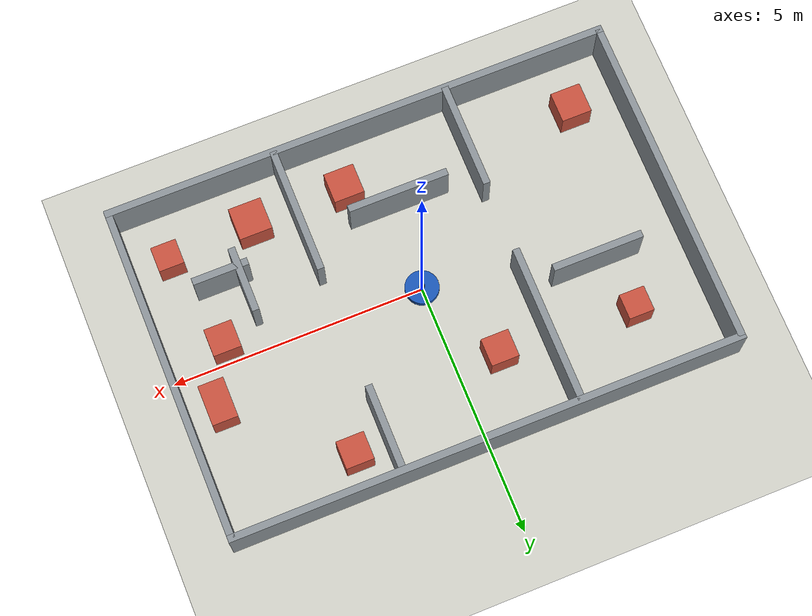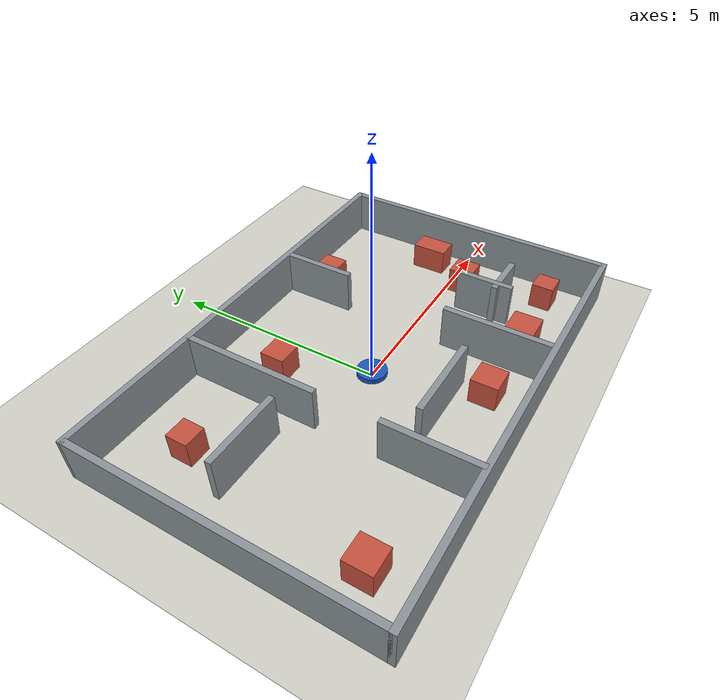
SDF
<?xml version="1.0"?>
<sdf version="1.9">
  <world name="nav_smoke">
    <physics name="1ms" type="ode">
      <max_step_size>0.001</max_step_size>
      <real_time_factor>1.0</real_time_factor>
      <real_time_update_rate>4000.0</real_time_update_rate>
    </physics>

    <plugin
      filename="gz-sim-physics-system"
      name="gz::sim::systems::Physics">
    </plugin>
    <plugin
      filename="gz-sim-user-commands-system"
      name="gz::sim::systems::UserCommands">
    </plugin>
    <plugin
      filename="gz-sim-scene-broadcaster-system"
      name="gz::sim::systems::SceneBroadcaster">
    </plugin>
    <plugin
      filename="gz-sim-sensors-system"
      name="gz::sim::systems::Sensors">
      <render_engine>ogre2</render_engine>
    </plugin>

    <scene>
      <ambient>0.45 0.45 0.45 1</ambient>
      <background>0.78 0.82 0.86 1</background>
      <shadows>false</shadows>
    </scene>

    <light name="sun" type="directional">
      <pose>0 0 10 0 0 0</pose>
      <diffuse>0.8 0.8 0.8 1</diffuse>
      <specular>0.2 0.2 0.2 1</specular>
      <direction>-0.5 0.2 -0.9</direction>
    </light>

    <model name="ground_plane">
      <static>true</static>
      <link name="link">
        <collision name="collision">
          <geometry>
            <plane>
              <normal>0 0 1</normal>
              <size>12 9</size>
            </plane>
          </geometry>
        </collision>
        <visual name="visual">
          <geometry>
            <plane>
              <normal>0 0 1</normal>
              <size>12 9</size>
            </plane>
          </geometry>
          <material>
            <ambient>0.82 0.82 0.78 1</ambient>
            <diffuse>0.82 0.82 0.78 1</diffuse>
          </material>
        </visual>
      </link>
    </model>

    <model name="test_room">
      <static>true</static>
      <link name="north_wall">
        <pose>0.0 3.3 0.5 0 0 0</pose>
        <collision name="collision">
          <geometry>
            <box>
              <size>10.14 0.14 1.0</size>
            </box>
          </geometry>
        </collision>
        <visual name="visual">
          <geometry>
            <box>
              <size>10.14 0.14 1.0</size>
            </box>
          </geometry>
          <material>
            <ambient>0.55 0.58 0.60 1</ambient>
            <diffuse>0.55 0.58 0.60 1</diffuse>
          </material>
        </visual>
      </link>

      <link name="south_wall">
        <pose>0.0 -3.3 0.5 0 0 0</pose>
        <collision name="collision">
          <geometry>
            <box>
              <size>10.14 0.14 1.0</size>
            </box>
          </geometry>
        </collision>
        <visual name="visual">
          <geometry>
            <box>
              <size>10.14 0.14 1.0</size>
            </box>
          </geometry>
          <material>
            <ambient>0.55 0.58 0.60 1</ambient>
            <diffuse>0.55 0.58 0.60 1</diffuse>
          </material>
        </visual>
      </link>

      <link name="west_wall">
        <pose>-5.0 0.0 0.5 0 0 0</pose>
        <collision name="collision">
          <geometry>
            <box>
              <size>0.14 6.6 1.0</size>
            </box>
          </geometry>
        </collision>
        <visual name="visual">
          <geometry>
            <box>
              <size>0.14 6.6 1.0</size>
            </box>
          </geometry>
          <material>
            <ambient>0.55 0.58 0.60 1</ambient>
            <diffuse>0.55 0.58 0.60 1</diffuse>
          </material>
        </visual>
      </link>

      <link name="east_wall">
        <pose>5.0 0.0 0.5 0 0 0</pose>
        <collision name="collision">
          <geometry>
            <box>
              <size>0.14 6.6 1.0</size>
            </box>
          </geometry>
        </collision>
        <visual name="visual">
          <geometry>
            <box>
              <size>0.14 6.6 1.0</size>
            </box>
          </geometry>
          <material>
            <ambient>0.55 0.58 0.60 1</ambient>
            <diffuse>0.55 0.58 0.60 1</diffuse>
          </material>
        </visual>
      </link>

      <link name="west_partition_south">
        <pose>-1.8 -2.25 0.5 0 0 0</pose>
        <collision name="collision">
          <geometry>
            <box>
              <size>0.14 2.1 1.0</size>
            </box>
          </geometry>
        </collision>
        <visual name="visual">
          <geometry>
            <box>
              <size>0.14 2.1 1.0</size>
            </box>
          </geometry>
          <material>
            <ambient>0.55 0.58 0.60 1</ambient>
            <diffuse>0.55 0.58 0.60 1</diffuse>
          </material>
        </visual>
      </link>

      <link name="west_partition_north">
        <pose>-1.8 1.75 0.5 0 0 0</pose>
        <collision name="collision">
          <geometry>
            <box>
              <size>0.14 3.1 1.0</size>
            </box>
          </geometry>
        </collision>
        <visual name="visual">
          <geometry>
            <box>
              <size>0.14 3.1 1.0</size>
            </box>
          </geometry>
          <material>
            <ambient>0.55 0.58 0.60 1</ambient>
            <diffuse>0.55 0.58 0.60 1</diffuse>
          </material>
        </visual>
      </link>

      <link name="east_partition_south">
        <pose>1.7 -2.05 0.5 0 0 0</pose>
        <collision name="collision">
          <geometry>
            <box>
              <size>0.14 2.5 1.0</size>
            </box>
          </geometry>
        </collision>
        <visual name="visual">
          <geometry>
            <box>
              <size>0.14 2.5 1.0</size>
            </box>
          </geometry>
          <material>
            <ambient>0.55 0.58 0.60 1</ambient>
            <diffuse>0.55 0.58 0.60 1</diffuse>
          </material>
        </visual>
      </link>

      <link name="east_partition_north">
        <pose>1.7 2.45 0.5 0 0 0</pose>
        <collision name="collision">
          <geometry>
            <box>
              <size>0.14 1.7 1.0</size>
            </box>
          </geometry>
        </collision>
        <visual name="visual">
          <geometry>
            <box>
              <size>0.14 1.7 1.0</size>
            </box>
          </geometry>
          <material>
            <ambient>0.55 0.58 0.60 1</ambient>
            <diffuse>0.55 0.58 0.60 1</diffuse>
          </material>
        </visual>
      </link>

      <link name="west_short_wall">
        <pose>-3.2 0.8 0.5 0 0 0</pose>
        <collision name="collision">
          <geometry>
            <box>
              <size>1.8 0.14 1.0</size>
            </box>
          </geometry>
        </collision>
        <visual name="visual">
          <geometry>
            <box>
              <size>1.8 0.14 1.0</size>
            </box>
          </geometry>
          <material>
            <ambient>0.55 0.58 0.60 1</ambient>
            <diffuse>0.55 0.58 0.60 1</diffuse>
          </material>
        </visual>
      </link>

      <link name="middle_short_wall">
        <pose>-0.2 -1.7 0.5 0 0 0</pose>
        <collision name="collision">
          <geometry>
            <box>
              <size>2.0 0.14 1.0</size>
            </box>
          </geometry>
        </collision>
        <visual name="visual">
          <geometry>
            <box>
              <size>2.0 0.14 1.0</size>
            </box>
          </geometry>
          <material>
            <ambient>0.55 0.58 0.60 1</ambient>
            <diffuse>0.55 0.58 0.60 1</diffuse>
          </material>
        </visual>
      </link>

      <link name="east_short_wall">
        <pose>3.45 -1.45 0.5 0 0 0</pose>
        <collision name="collision">
          <geometry>
            <box>
              <size>1.1 0.14 1.0</size>
            </box>
          </geometry>
        </collision>
        <visual name="visual">
          <geometry>
            <box>
              <size>1.1 0.14 1.0</size>
            </box>
          </geometry>
          <material>
            <ambient>0.55 0.58 0.60 1</ambient>
            <diffuse>0.55 0.58 0.60 1</diffuse>
          </material>
        </visual>
      </link>

      <link name="east_divider">
        <pose>3.1 -1.15 0.5 0 0 0</pose>
        <collision name="collision">
          <geometry>
            <box>
              <size>0.14 1.3 1.0</size>
            </box>
          </geometry>
        </collision>
        <visual name="visual">
          <geometry>
            <box>
              <size>0.14 1.3 1.0</size>
            </box>
          </geometry>
          <material>
            <ambient>0.55 0.58 0.60 1</ambient>
            <diffuse>0.55 0.58 0.60 1</diffuse>
          </material>
        </visual>
      </link>

      <link name="west_crate_a">
        <pose>-4.0 -2.25 0.3 0 0 0</pose>
        <collision name="collision">
          <geometry>
            <box>
              <size>0.6 0.6 0.6</size>
            </box>
          </geometry>
        </collision>
        <visual name="visual">
          <geometry>
            <box>
              <size>0.6 0.6 0.6</size>
            </box>
          </geometry>
          <material>
            <ambient>0.78 0.32 0.24 1</ambient>
            <diffuse>0.78 0.32 0.24 1</diffuse>
          </material>
        </visual>
      </link>

      <link name="west_crate_b">
        <pose>-3.55 1.9 0.3 0 0 0</pose>
        <collision name="collision">
          <geometry>
            <box>
              <size>0.5 0.5 0.6</size>
            </box>
          </geometry>
        </collision>
        <visual name="visual">
          <geometry>
            <box>
              <size>0.5 0.5 0.6</size>
            </box>
          </geometry>
          <material>
            <ambient>0.78 0.32 0.24 1</ambient>
            <diffuse>0.78 0.32 0.24 1</diffuse>
          </material>
        </visual>
      </link>

      <link name="middle_column_a">
        <pose>-0.85 1.75 0.3 0 0 0</pose>
        <collision name="collision">
          <geometry>
            <box>
              <size>0.55 0.55 0.6</size>
            </box>
          </geometry>
        </collision>
        <visual name="visual">
          <geometry>
            <box>
              <size>0.55 0.55 0.6</size>
            </box>
          </geometry>
          <material>
            <ambient>0.78 0.32 0.24 1</ambient>
            <diffuse>0.78 0.32 0.24 1</diffuse>
          </material>
        </visual>
      </link>

      <link name="middle_column_b">
        <pose>0.65 -2.35 0.3 0 0 0</pose>
        <collision name="collision">
          <geometry>
            <box>
              <size>0.6 0.6 0.6</size>
            </box>
          </geometry>
        </collision>
        <visual name="visual">
          <geometry>
            <box>
              <size>0.6 0.6 0.6</size>
            </box>
          </geometry>
          <material>
            <ambient>0.78 0.32 0.24 1</ambient>
            <diffuse>0.78 0.32 0.24 1</diffuse>
          </material>
        </visual>
      </link>

      <link name="east_crate_a">
        <pose>2.55 -2.35 0.3 0 0 0</pose>
        <collision name="collision">
          <geometry>
            <box>
              <size>0.65 0.65 0.6</size>
            </box>
          </geometry>
        </collision>
        <visual name="visual">
          <geometry>
            <box>
              <size>0.65 0.65 0.6</size>
            </box>
          </geometry>
          <material>
            <ambient>0.78 0.32 0.24 1</ambient>
            <diffuse>0.78 0.32 0.24 1</diffuse>
          </material>
        </visual>
      </link>

      <link name="east_crate_b">
        <pose>3.85 -0.35 0.3 0 0 0</pose>
        <collision name="collision">
          <geometry>
            <box>
              <size>0.55 0.55 0.6</size>
            </box>
          </geometry>
        </collision>
        <visual name="visual">
          <geometry>
            <box>
              <size>0.55 0.55 0.6</size>
            </box>
          </geometry>
          <material>
            <ambient>0.78 0.32 0.24 1</ambient>
            <diffuse>0.78 0.32 0.24 1</diffuse>
          </material>
        </visual>
      </link>

      <link name="east_crate_c">
        <pose>2.35 2.55 0.3 0 0 0</pose>
        <collision name="collision">
          <geometry>
            <box>
              <size>0.55 0.55 0.6</size>
            </box>
          </geometry>
        </collision>
        <visual name="visual">
          <geometry>
            <box>
              <size>0.55 0.55 0.6</size>
            </box>
          </geometry>
          <material>
            <ambient>0.78 0.32 0.24 1</ambient>
            <diffuse>0.78 0.32 0.24 1</diffuse>
          </material>
        </visual>
      </link>

      <link name="east_shelf">
        <pose>4.35 0.75 0.3 0 0 0</pose>
        <collision name="collision">
          <geometry>
            <box>
              <size>0.5 0.8 0.6</size>
            </box>
          </geometry>
        </collision>
        <visual name="visual">
          <geometry>
            <box>
              <size>0.5 0.8 0.6</size>
            </box>
          </geometry>
          <material>
            <ambient>0.78 0.32 0.24 1</ambient>
            <diffuse>0.78 0.32 0.24 1</diffuse>
          </material>
        </visual>
      </link>

      <link name="east_low_box">
        <pose>4.25 -2.25 0.3 0 0 0</pose>
        <collision name="collision">
          <geometry>
            <box>
              <size>0.5 0.5 0.6</size>
            </box>
          </geometry>
        </collision>
        <visual name="visual">
          <geometry>
            <box>
              <size>0.5 0.5 0.6</size>
            </box>
          </geometry>
          <material>
            <ambient>0.78 0.32 0.24 1</ambient>
            <diffuse>0.78 0.32 0.24 1</diffuse>
          </material>
        </visual>
      </link>
    </model>

    <model name="nav_bot">
      <pose>0 0 0 0 0 0</pose>

      <link name="base_link">
        <inertial>
          <pose>0 0 0.12 0 0 0</pose>
          <mass>2.0</mass>
          <inertia>
            <ixx>0.02</ixx>
            <ixy>0.0</ixy>
            <ixz>0.0</ixz>
            <iyy>0.02</iyy>
            <iyz>0.0</iyz>
            <izz>0.02</izz>
          </inertia>
        </inertial>
        <collision name="collision">
          <pose>0 0 0.12 0 0 0</pose>
          <geometry>
            <cylinder>
              <radius>0.33</radius>
              <length>0.12</length>
            </cylinder>
          </geometry>
        </collision>
        <visual name="visual">
          <pose>0 0 0.12 0 0 0</pose>
          <geometry>
            <cylinder>
              <radius>0.33</radius>
              <length>0.12</length>
            </cylinder>
          </geometry>
          <material>
            <ambient>0.10 0.34 0.72 1</ambient>
            <diffuse>0.10 0.34 0.72 1</diffuse>
          </material>
        </visual>
      </link>

      <link name="left_wheel_link">
        <inertial>
          <pose>0 0.18 0.06 -1.5708 0 0</pose>
          <mass>0.2</mass>
          <inertia>
            <ixx>0.001</ixx>
            <ixy>0.0</ixy>
            <ixz>0.0</ixz>
            <iyy>0.001</iyy>
            <iyz>0.0</iyz>
            <izz>0.001</izz>
          </inertia>
        </inertial>
        <collision name="collision">
          <pose>0 0.18 0.06 -1.5708 0 0</pose>
          <geometry>
            <cylinder>
              <radius>0.06</radius>
              <length>0.04</length>
            </cylinder>
          </geometry>
          <surface>
            <friction>
              <ode>
                <mu>1.0</mu>
                <mu2>1.0</mu2>
              </ode>
            </friction>
          </surface>
        </collision>
        <visual name="visual">
          <pose>0 0.18 0.06 -1.5708 0 0</pose>
          <geometry>
            <cylinder>
              <radius>0.06</radius>
              <length>0.04</length>
            </cylinder>
          </geometry>
          <material>
            <ambient>0.04 0.04 0.04 1</ambient>
            <diffuse>0.04 0.04 0.04 1</diffuse>
          </material>
        </visual>
      </link>

      <link name="right_wheel_link">
        <inertial>
          <pose>0 -0.18 0.06 -1.5708 0 0</pose>
          <mass>0.2</mass>
          <inertia>
            <ixx>0.001</ixx>
            <ixy>0.0</ixy>
            <ixz>0.0</ixz>
            <iyy>0.001</iyy>
            <iyz>0.0</iyz>
            <izz>0.001</izz>
          </inertia>
        </inertial>
        <collision name="collision">
          <pose>0 -0.18 0.06 -1.5708 0 0</pose>
          <geometry>
            <cylinder>
              <radius>0.06</radius>
              <length>0.04</length>
            </cylinder>
          </geometry>
          <surface>
            <friction>
              <ode>
                <mu>1.0</mu>
                <mu2>1.0</mu2>
              </ode>
            </friction>
          </surface>
        </collision>
        <visual name="visual">
          <pose>0 -0.18 0.06 -1.5708 0 0</pose>
          <geometry>
            <cylinder>
              <radius>0.06</radius>
              <length>0.04</length>
            </cylinder>
          </geometry>
          <material>
            <ambient>0.04 0.04 0.04 1</ambient>
            <diffuse>0.04 0.04 0.04 1</diffuse>
          </material>
        </visual>
      </link>

      <link name="caster_link">
        <pose>-0.15 0 0.035 0 0 0</pose>
        <inertial>
          <mass>0.05</mass>
          <inertia>
            <ixx>0.0001</ixx>
            <ixy>0.0</ixy>
            <ixz>0.0</ixz>
            <iyy>0.0001</iyy>
            <iyz>0.0</iyz>
            <izz>0.0001</izz>
          </inertia>
        </inertial>
        <collision name="collision">
          <geometry>
            <sphere>
              <radius>0.035</radius>
            </sphere>
          </geometry>
        </collision>
        <visual name="visual">
          <geometry>
            <sphere>
              <radius>0.035</radius>
            </sphere>
          </geometry>
          <material>
            <ambient>0.04 0.04 0.04 1</ambient>
            <diffuse>0.04 0.04 0.04 1</diffuse>
          </material>
        </visual>
      </link>

      <link name="base_scan">
        <pose>0 0 0.23 0 0 0</pose>
        <inertial>
          <mass>0.05</mass>
          <inertia>
            <ixx>0.0001</ixx>
            <ixy>0.0</ixy>
            <ixz>0.0</ixz>
            <iyy>0.0001</iyy>
            <iyz>0.0</iyz>
            <izz>0.0001</izz>
          </inertia>
        </inertial>
        <collision name="collision">
          <geometry>
            <cylinder>
              <radius>0.055</radius>
              <length>0.05</length>
            </cylinder>
          </geometry>
        </collision>
        <visual name="visual">
          <geometry>
            <cylinder>
              <radius>0.055</radius>
              <length>0.05</length>
            </cylinder>
          </geometry>
          <material>
            <ambient>0.05 0.05 0.05 1</ambient>
            <diffuse>0.05 0.05 0.05 1</diffuse>
          </material>
        </visual>
        <sensor name="lidar" type="gpu_lidar">
          <always_on>true</always_on>
          <visualize>true</visualize>
          <update_rate>10</update_rate>
          <topic>/scan</topic>
          <gz_frame_id>base_scan</gz_frame_id>
          <ray>
            <scan>
              <horizontal>
                <samples>360</samples>
                <resolution>1</resolution>
                <min_angle>-3.14159</min_angle>
                <max_angle>3.14159</max_angle>
              </horizontal>
            </scan>
            <range>
              <min>0.05</min>
              <max>8.0</max>
              <resolution>0.01</resolution>
            </range>
          </ray>
        </sensor>
      </link>

      <joint name="left_wheel_joint" type="revolute">
        <parent>base_link</parent>
        <child>left_wheel_link</child>
        <pose>0 0.18 0.06 -1.5708 0 0</pose>
        <axis>
          <xyz>0 0 1</xyz>
        </axis>
      </joint>

      <joint name="right_wheel_joint" type="revolute">
        <parent>base_link</parent>
        <child>right_wheel_link</child>
        <pose>0 -0.18 0.06 -1.5708 0 0</pose>
        <axis>
          <xyz>0 0 1</xyz>
        </axis>
      </joint>

      <joint name="caster_joint" type="ball">
        <parent>base_link</parent>
        <child>caster_link</child>
      </joint>

      <joint name="lidar_joint" type="fixed">
        <parent>base_link</parent>
        <child>base_scan</child>
        <pose>0 0 0.23 0 0 0</pose>
      </joint>

      <plugin
        filename="gz-sim-diff-drive-system"
        name="gz::sim::systems::DiffDrive">
        <left_joint>left_wheel_joint</left_joint>
        <right_joint>right_wheel_joint</right_joint>
        <wheel_separation>0.36</wheel_separation>
        <wheel_radius>0.06</wheel_radius>
        <odom_publish_frequency>30</odom_publish_frequency>
        <topic>/cmd_vel</topic>
        <odom_topic>/odom</odom_topic>
        <tf_topic>/tf</tf_topic>
        <frame_id>odom</frame_id>
        <child_frame_id>base_link</child_frame_id>
        <min_linear_velocity>-0.25</min_linear_velocity>
        <max_linear_velocity>0.25</max_linear_velocity>
        <min_angular_velocity>-1.2</min_angular_velocity>
        <max_angular_velocity>1.2</max_angular_velocity>
        <min_linear_acceleration>-0.5</min_linear_acceleration>
        <max_linear_acceleration>0.5</max_linear_acceleration>
        <min_angular_acceleration>-1.5</min_angular_acceleration>
        <max_angular_acceleration>1.5</max_angular_acceleration>
      </plugin>
    </model>
  </world>
</sdf>
